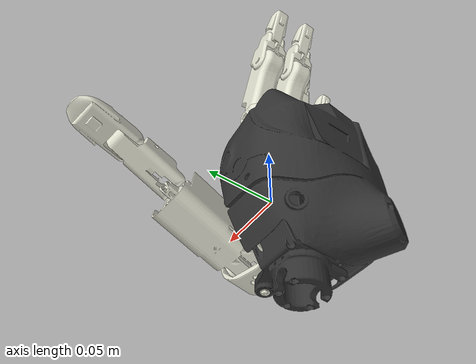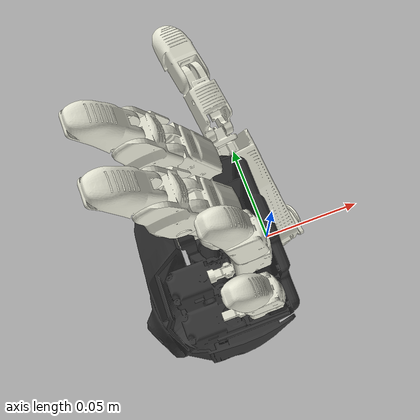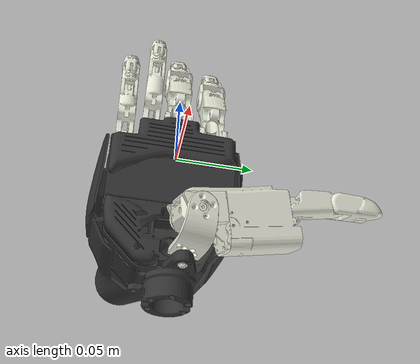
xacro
<?xml version="1.0"?>
<robot name="hand" xmlns:xacro="http://www.ros.org/wiki/xacro">

    <!-- Arguments -->
    <xacro:arg name="prefix" default="" />
    <xacro:arg name="use_hand_left" default="false" />

    <xacro:include filename="$(find liberhand_description)/urdf/hand_macro.xacro" />
    <xacro:property name="mesh_visual_path" value="file://$(find liberhand_description)/meshes/visual"/>

    <link name="world"/>

    <xacro:load_hand prefix="$(arg prefix)" connected_to="world" left="$(arg use_hand_left)">
        <origin rpy="0.0 0.0 0.0" xyz="0.0 0.0 0.0"/>
    </xacro:load_hand>

</robot>

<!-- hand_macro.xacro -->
<robot xmlns:xacro="http://www.ros.org/wiki/xacro">

    <xacro:macro name="load_hand" params=" prefix:='' connected_to:='' left:=False *origin">

        <xacro:if value="${(left == False)}">
            <xacro:property name="hand" value="hand_right"/>
            <xacro:property name="reverse" value="1"/>
        </xacro:if>
        <xacro:if value="${(left == True)}">
            <xacro:property name="hand" value="hand_left"/>
            <xacro:property name="reverse" value="-1"/>
        </xacro:if>

        <xacro:unless value="${not connected_to}">
            <joint name="${prefix}${connected_to}_to_${hand}_palm_fixed" type="fixed">
                <xacro:insert_block name="origin"/>
                <parent link="${prefix}${connected_to}" />
                <child link="${prefix}${hand}_palm" />
            </joint>
        </xacro:unless>

        <link name="${prefix}${hand}_palm">
            <inertial>
                <origin xyz="0 0 0" rpy="0 0 0" />
                <mass value="0.91778" />
                <inertia ixx="0.0018592" ixy="6.239E-05" ixz="-6.688E-05" iyy="0.0015814" iyz="3.163E-05" izz="0.00064901" />
            </inertial>
            <visual>
                <origin xyz="0 0 0" rpy="0 0 0" />
                <geometry>
                    <mesh filename="${mesh_visual_path}/palm.STL"  scale="1 ${reverse} 1"/>
                </geometry>
                <material name="hand_gray">
                    <color rgba="0.2 0.2 0.2 1" />
                </material>
            </visual>
            <collision>
                <origin xyz="0 0 0" rpy="0 0 0" />
                <geometry>
                    <mesh filename="${mesh_visual_path}/palm.STL"  scale="1 ${reverse} 1"/>
                </geometry>
            </collision>
        </link>
        <link name="${prefix}${hand}_f11">
            <inertial>
                <origin xyz="0 0.00069742 -0.0093798" rpy="0 0 0" />
                <mass value="0.0033015" />
                <inertia ixx="2E-07" ixy="0" ixz="0" iyy="3.1E-07" iyz="1E-08" izz="1.4E-07" />
            </inertial>
            <visual>
                <origin xyz="0 0 0" rpy="0 0 0" />
                <geometry>
                    <mesh filename="${mesh_visual_path}/f11.STL" />
                </geometry>
                <material name="hand_white">
                    <color rgba="0.913725 0.913725 0.847059 1" />
                </material>
            </visual>
            <collision>
                <origin xyz="0 0 0" rpy="0 0 0" />
                <geometry>
                    <mesh filename="${mesh_visual_path}/f11.STL" />
                </geometry>
            </collision>
        </link>
        <joint name="${prefix}${hand}_f11_joint" type="revolute">
            <origin xyz="-0.022466 ${reverse * 0.027654} 0.043657" rpy="1.5708 ${reverse * 0.02618} 1.5708" />
            <parent link="${prefix}${hand}_palm" />
            <child link="${prefix}${hand}_f11" />
            <axis xyz="0 0 ${-reverse}" />
            <limit lower="-0.4" upper="0.4" effort="10" velocity="3.14" />
            <dynamics damping="1.0" friction="0.01"/>
        </joint>
        <link name="${prefix}${hand}_f12">
            <inertial>
                <origin xyz="0.026032 -0.0074611 2.268E-05" rpy="0 0 0" />
                <mass value="0.058465" />
                <inertia ixx="4.34E-06" ixy="-4.9E-06" ixz="5.3E-07" iyy="1.396E-05" iyz="-2.1E-07" izz="1.633E-05" />
            </inertial>
            <visual>
                <origin xyz="0 0 0" rpy="0 0 0" />
                <geometry>
                    <mesh filename="${mesh_visual_path}/f12.STL" />
                </geometry>
                <material name="hand_white">
                    <color rgba="0.913725 0.913725 0.847059 1" />
                </material>
            </visual>
            <collision>
                <origin xyz="0 0 0" rpy="0 0 0" />
                <geometry>
                    <mesh filename="${mesh_visual_path}/f12.STL" />
                </geometry>
            </collision>
        </link>
        <joint name="${prefix}${hand}_f12_joint" type="revolute">
            <origin xyz="0 0 0" rpy="1.5708 0 1.5708" />
            <parent link="${prefix}${hand}_f11" />
            <child link="${prefix}${hand}_f12" />
            <axis xyz="0 0 1" />
            <limit lower="0" upper="2.09" effort="10" velocity="3.14" />
            <dynamics damping="1.0" friction="0.01"/>
        </joint>
        <link name="${prefix}${hand}_f13">
            <inertial>
                <origin xyz="0.0090975 -0.0015069 0.0013415" rpy="0 0 0" />
                <mass value="0.014574" />
                <inertia ixx="9.3E-07" ixy="-3.2E-07" ixz="-1.8E-07" iyy="2.04E-06" iyz="6E-08" izz="1.81E-06" />
            </inertial>
            <visual>
                <origin xyz="0 0 0" rpy="0 0 0" />
                <geometry>
                    <mesh filename="${mesh_visual_path}/f13.STL" />
                </geometry>
                <material name="hand_white">
                    <color rgba="0.913725 0.913725 0.847059 1" />
                </material>
            </visual>
            <collision>
                <origin xyz="0 0 0" rpy="0 0 0" />
                <geometry>
                    <mesh filename="${mesh_visual_path}/f13.STL" />
                </geometry>
            </collision>
        </link>
        <joint name="${prefix}${hand}_f13_joint" type="revolute">
            <origin xyz="0.048883 -0.018383 0" rpy="0 0 0" />
            <parent link="${prefix}${hand}_f12" />
            <child link="${prefix}${hand}_f13" />
            <axis xyz="0 0 1" />
            <limit lower="0" upper="1.744" effort="10" velocity="3.14" />
            <dynamics damping="1.0" friction="0.01"/>
        </joint>
        <link name="${prefix}${hand}_f14">
            <inertial>
                <origin xyz="0.007749 -0.0041898 -0.00072552" rpy="0 0 0" />
                <mass value="0.0055228" />
                <inertia ixx="2.3E-07" ixy="-1.5E-07" ixz="2E-08" iyy="4E-07" iyz="-1E-08" izz="5E-07" />
            </inertial>
            <visual>
                <origin xyz="0 0 0" rpy="0 0 0" />
                <geometry>
                    <mesh filename="${mesh_visual_path}/f14.STL" />
                </geometry>
                <material name="hand_white">
                    <color rgba="0.913725 0.913725 0.847059 1" />
                </material>
            </visual>
            <collision>
                <origin xyz="0 0 0" rpy="0 0 0" />
                <geometry>
                    <mesh filename="${mesh_visual_path}/f14.STL" />
                </geometry>
            </collision>
        </link>
        <joint name="${prefix}${hand}_f14_joint" type="revolute">
            <origin xyz="0.0284 -0.0092477 0" rpy="0 0 0" />
            <parent link="${prefix}${hand}_f13" />
            <child link="${prefix}${hand}_f14" />
            <axis xyz="0 0 1" />
            <limit lower="0" upper="1.744" effort="10" velocity="3.14" />
            <dynamics damping="1.0" friction="0.01"/>
        </joint>
        <link name="${prefix}${hand}_f14_end">
        </link>
        <joint name="${prefix}${hand}_f14_end_joint" type="fixed">
            <origin xyz="0.019695 -0.0034802 0" rpy="0 0 0" />
            <parent link="${prefix}${hand}_f14" />
            <child link="${prefix}${hand}_f14_end" />
            <axis xyz="0 0 0" />
        </joint>
        <link name="${prefix}${hand}_f21">
            <inertial>
                <origin xyz="0 0.00069742 -0.0093798" rpy="0 0 0" />
                <mass value="0.0033015" />
                <inertia ixx="2E-07" ixy="0" ixz="0" iyy="3.1E-07" iyz="1E-08" izz="1.4E-07" />
            </inertial>
            <visual>
                <origin xyz="0 0 0" rpy="0 0 0" />
                <geometry>
                    <mesh filename="${mesh_visual_path}/f21.STL" />
                </geometry>
                <material name="hand_white">
                    <color rgba="0.913725 0.913725 0.847059 1" />
                </material>
            </visual>
            <collision>
                <origin xyz="0 0 0" rpy="0 0 0" />
                <geometry>
                    <mesh filename="${mesh_visual_path}/f21.STL" />
                </geometry>
            </collision>
        </link>
        <joint name="${prefix}${hand}_f21_joint" type="revolute">
            <origin xyz="-0.022466 ${reverse * 0.0022583} 0.053546" rpy="1.5708 0 1.5708" />
            <parent link="${prefix}${hand}_palm" />
            <child link="${prefix}${hand}_f21" />
            <axis xyz="0 0 ${-reverse}" />
            <limit lower="-0.4" upper="0.4" effort="10" velocity="3.14" />
            <dynamics damping="1.0" friction="0.01"/>
        </joint>
        <link name="${prefix}${hand}_f22">
            <inertial>
                <origin xyz="0.026032 -0.0074611 2.268E-05" rpy="0 0 0" />
                <mass value="0.058465" />
                <inertia ixx="4.34E-06" ixy="-4.9E-06" ixz="5.3E-07" iyy="1.396E-05" iyz="-2.1E-07" izz="1.633E-05" />
            </inertial>
            <visual>
                <origin xyz="0 0 0" rpy="0 0 0" />
                <geometry>
                    <mesh filename="${mesh_visual_path}/f22.STL" />
                </geometry>
                <material name="hand_white">
                    <color rgba="0.913725 0.913725 0.847059 1" />
                </material>
            </visual>
            <collision>
                <origin xyz="0 0 0" rpy="0 0 0" />
                <geometry>
                    <mesh filename="${mesh_visual_path}/f22.STL" />
                </geometry>
            </collision>
        </link>
        <joint name="${prefix}${hand}_f22_joint" type="revolute">
            <origin xyz="0 0 0" rpy="1.5708 0 1.5708" />
            <parent link="${prefix}${hand}_f21" />
            <child link="${prefix}${hand}_f22" />
            <axis xyz="0 0 1" />
            <limit lower="0" upper="2.09" effort="10" velocity="3.14" />
            <dynamics damping="1.0" friction="0.01"/>
        </joint>
        <link name="${prefix}${hand}_f23">
            <inertial>
                <origin xyz="0.0090975 -0.0015069 0.0013415" rpy="0 0 0" />
                <mass value="0.014574" />
                <inertia ixx="9.3E-07" ixy="-3.2E-07" ixz="-1.8E-07" iyy="2.04E-06" iyz="6E-08" izz="1.81E-06" />
            </inertial>
            <visual>
                <origin xyz="0 0 0" rpy="0 0 0" />
                <geometry>
                    <mesh filename="${mesh_visual_path}/f23.STL" />
                </geometry>
                <material name="hand_white">
                    <color rgba="0.913725 0.913725 0.847059 1" />
                </material>
            </visual>
            <collision>
                <origin xyz="0 0 0" rpy="0 0 0" />
                <geometry>
                    <mesh filename="${mesh_visual_path}/f23.STL" />
                </geometry>
            </collision>
        </link>
        <joint name="${prefix}${hand}_f23_joint" type="revolute">
            <origin xyz="0.048883 -0.018383 0" rpy="0 0 0" />
            <parent link="${prefix}${hand}_f22" />
            <child link="${prefix}${hand}_f23" />
            <axis xyz="0 0 1" />
            <limit lower="0" upper="1.744" effort="10" velocity="3.14" />
            <dynamics damping="1.0" friction="0.01"/>
        </joint>
        <link name="${prefix}${hand}_f24">
            <inertial>
                <origin xyz="0.007749 -0.0041898 -0.00072552" rpy="0 0 0" />
                <mass value="0.0055228" />
                <inertia ixx="2.3E-07" ixy="-1.5E-07" ixz="2E-08" iyy="4E-07" iyz="-1E-08" izz="5E-07" />
            </inertial>
            <visual>
                <origin xyz="0 0 0" rpy="0 0 0" />
                <geometry>
                    <mesh filename="${mesh_visual_path}/f24.STL" />
                </geometry>
                <material name="hand_white">
                    <color rgba="0.913725 0.913725 0.847059 1" />
                </material>
            </visual>
            <collision>
                <origin xyz="0 0 0" rpy="0 0 0" />
                <geometry>
                    <mesh filename="${mesh_visual_path}/f24.STL" />
                </geometry>
            </collision>
        </link>
        <joint name="${prefix}${hand}_f24_joint" type="revolute">
            <origin xyz="0.0284 -0.0092477 0" rpy="0 0 0" />
            <parent link="${prefix}${hand}_f23" />
            <child link="${prefix}${hand}_f24" />
            <axis xyz="0 0 1" />
            <limit lower="0" upper="1.744" effort="10" velocity="3.14" />
            <dynamics damping="1.0" friction="0.01"/>
        </joint>
        <link name="${prefix}${hand}_f24_end">
        </link>
        <joint name="${prefix}${hand}_f24_end_joint" type="fixed">
            <origin xyz="0.019695 -0.0034802 0" rpy="0 0 0" />
            <parent link="${prefix}${hand}_f24" />
            <child link="${prefix}${hand}_f24_end" />
            <axis xyz="0 0 0" />
        </joint>
        <link name="${prefix}${hand}_f31">
            <inertial>
                <origin xyz="-6.964E-05 -0.00044078 -0.012759" rpy="0 0 0" />
                <mass value="0.0085521" />
                <inertia ixx="7.6E-07" ixy="0" ixz="0" iyy="7.6E-07" iyz="4E-08" izz="1.3E-07" />
            </inertial>
            <visual>
                <origin xyz="0 0 0" rpy="0 0 0" />
                <geometry>
                    <mesh filename="${mesh_visual_path}/f31.STL" />
                </geometry>
                <material name="hand_white">
                    <color rgba="0.913725 0.913725 0.847059 1" />
                </material>
            </visual>
            <collision>
                <origin xyz="0 0 0" rpy="0 0 0" />
                <geometry>
                    <mesh filename="${mesh_visual_path}/f31.STL" />
                </geometry>
            </collision>
        </link>
        <joint name="${prefix}${hand}_f31_joint" type="revolute">
            <origin xyz="-0.021466 ${-(reverse * 0.017542)} 0.047798" rpy="1.5708 0 1.5708" />
            <parent link="${prefix}${hand}_palm" />
            <child link="${prefix}${hand}_f31" />
            <axis xyz="0 0 ${-reverse}" />
            <limit lower="-0.4" upper="0.4" effort="10" velocity="3.14" />
            <dynamics damping="1.0" friction="0.01"/>
        </joint>
        <link name="${prefix}${hand}_f32">
            <inertial>
                <origin xyz="0.025132 0.0031733 -8.727E-05" rpy="0 0 0" />
                <mass value="0.01244" />
                <inertia ixx="4.5E-07" ixy="-1.2E-07" ixz="0" iyy="2.29E-06" iyz="0" izz="2.41E-06" />
            </inertial>
            <visual>
                <origin xyz="0 0 0" rpy="0 0 0" />
                <geometry>
                    <mesh filename="${mesh_visual_path}/f32.STL" />
                </geometry>
                <material name="hand_white">
                    <color rgba="0.913725 0.913725 0.847059 1" />
                </material>
            </visual>
            <collision>
                <origin xyz="0 0 0" rpy="0 0 0" />
                <geometry>
                    <mesh filename="${mesh_visual_path}/f32.STL" />
                </geometry>
            </collision>
        </link>
        <joint name="${prefix}${hand}_f32_joint" type="revolute">
            <origin xyz="0 0 0" rpy="1.5708 0 1.5708" />
            <parent link="${prefix}${hand}_f31" />
            <child link="${prefix}${hand}_f32" />
            <axis xyz="0 0 1" />
            <limit lower="0" upper="1.744" effort="10" velocity="3.14" />
            <dynamics damping="1.0" friction="0.01"/>
        </joint>
        <link name="${prefix}${hand}_f33">
            <inertial>
                <origin xyz="0.010032 -0.00058707 -9.093E-05" rpy="0 0 0" />
                <mass value="0.0071009" />
                <inertia ixx="2.8E-07" ixy="-8E-08" ixz="0" iyy="6.9E-07" iyz="0" izz="7E-07" />
            </inertial>
            <visual>
                <origin xyz="0 0 0" rpy="0 0 0" />
                <geometry>
                    <mesh filename="${mesh_visual_path}/f33.STL" />
                </geometry>
                <material name="hand_white">
                    <color rgba="0.913725 0.913725 0.847059 1" />
                </material>
            </visual>
            <collision>
                <origin xyz="0 0 0" rpy="0 0 0" />
                <geometry>
                    <mesh filename="${mesh_visual_path}/f33.STL" />
                </geometry>
            </collision>
        </link>
        <joint name="${prefix}${hand}_f33_joint" type="revolute">
            <origin xyz="0.044995 0.00066781 0" rpy="0 0 0" />
            <parent link="${prefix}${hand}_f32" />
            <child link="${prefix}${hand}_f33" />
            <axis xyz="0 0 1" />
            <limit lower="0" upper="1.744" effort="10" velocity="3.14" />
            <dynamics damping="1.0" friction="0.01"/>
        </joint>
        <link name="${prefix}${hand}_f34">
            <inertial>
                <origin xyz="0.010482 -0.0030354 -1.03E-05" rpy="0 0 0" />
                <mass value="0.0049513" />
                <inertia ixx="1.3E-07" ixy="-6E-08" ixz="0" iyy="3.2E-07" iyz="0" izz="3.7E-07" />
            </inertial>
            <visual>
                <origin xyz="0 0 0" rpy="0 0 0" />
                <geometry>
                    <mesh filename="${mesh_visual_path}/f34.STL" />
                </geometry>
                <material name="hand_white">
                    <color rgba="0.913725 0.913725 0.847059 1" />
                </material>
            </visual>
            <collision>
                <origin xyz="0 0 0" rpy="0 0 0" />
                <geometry>
                    <mesh filename="${mesh_visual_path}/f34.STL" />
                </geometry>
            </collision>
        </link>
        <joint name="${prefix}${hand}_f34_joint" type="revolute">
            <origin xyz="0.024601 -0.0044465 0" rpy="0 0 0" />
            <parent link="${prefix}${hand}_f33" />
            <child link="${prefix}${hand}_f34" />
            <axis xyz="0 0 1" />
            <limit lower="0" upper="1.744" effort="10" velocity="3.14" />
            <dynamics damping="1.0" friction="0.01"/>
        </joint>
        <link name="${prefix}${hand}_f34_end">
        </link>
        <joint name="${prefix}${hand}_f34_end_joint" type="fixed">
            <origin xyz="0.021134 0.0011803 0" rpy="0 0 0" />
            <parent link="${prefix}${hand}_f34" />
            <child link="${prefix}${hand}_f34_end" />
            <axis xyz="0 0 0" />
        </joint>
        <link name="${prefix}${hand}_f41">
            <inertial>
                <origin xyz="-6.964E-05 -0.00044078 -0.012759" rpy="0 0 0" />
                <mass value="0.0085521" />
                <inertia ixx="7.6E-07" ixy="0" ixz="0" iyy="7.6E-07" iyz="4E-08" izz="1.3E-07" />
            </inertial>
            <visual>
                <origin xyz="0 0 0" rpy="0 0 0" />
                <geometry>
                    <mesh filename="${mesh_visual_path}/f41.STL" />
                </geometry>
                <material name="hand_white">
                    <color rgba="0.913725 0.913725 0.847059 1" />
                </material>
            </visual>
            <collision>
                <origin xyz="0 0 0" rpy="0 0 0" />
                <geometry>
                    <mesh filename="${mesh_visual_path}/f41.STL" />
                </geometry>
            </collision>
        </link>
        <joint name="${prefix}${hand}_f41_joint" type="revolute">
            <origin xyz="-0.021466 ${-(reverse * 0.034458)} 0.032384" rpy="1.5708 ${-(reverse * 0.034907)} 1.5708" />
            <parent link="${prefix}${hand}_palm" />
            <child link="${prefix}${hand}_f41" />
            <axis xyz="0 0 ${-reverse}" />
            <limit lower="-0.4" upper="0.4" effort="10" velocity="3.14" />
            <dynamics damping="1.0" friction="0.01"/>
        </joint>
        <link name="${prefix}${hand}_f42">
            <inertial>
                <origin xyz="0.021044 0.0035949 -7.944E-05" rpy="0 0 0" />
                <mass value="0.0096409" />
                <inertia ixx="3.5E-07" ixy="-3E-08" ixz="0" iyy="1.24E-06" iyz="0" izz="1.35E-06" />
            </inertial>
            <visual>
                <origin xyz="0 0 0" rpy="0 0 0" />
                <geometry>
                    <mesh filename="${mesh_visual_path}/f42.STL" />
                </geometry>
                <material name="hand_white">
                    <color rgba="0.913725 0.913725 0.847059 1" />
                </material>
            </visual>
            <collision>
                <origin xyz="0 0 0" rpy="0 0 0" />
                <geometry>
                    <mesh filename="${mesh_visual_path}/f42.STL" />
                </geometry>
            </collision>
        </link>
        <joint name="${prefix}${hand}_f42_joint" type="revolute">
            <origin xyz="0 0 0" rpy="1.5708 0 1.5708" />
            <parent link="${prefix}${hand}_f41" />
            <child link="${prefix}${hand}_f42" />
            <axis xyz="0 0 1" />
            <limit lower="0" upper="1.6" effort="10" velocity="3.14" />
            <dynamics damping="1.0" friction="0.01"/>
        </joint>
        <link name="${prefix}${hand}_f43">
            <inertial>
                <origin xyz="0.010032 -0.00058707 -9.093E-05" rpy="0 0 0" />
                <mass value="0.0071009" />
                <inertia ixx="2.8E-07" ixy="-8E-08" ixz="0" iyy="6.9E-07" iyz="0" izz="7E-07" />
            </inertial>
            <visual>
                <origin xyz="0 0 0" rpy="0 0 0" />
                <geometry>
                    <mesh filename="${mesh_visual_path}/f43.STL" />
                </geometry>
                <material name="hand_white">
                    <color rgba="0.913725 0.913725 0.847059 1" />
                </material>
            </visual>
            <collision>
                <origin xyz="0 0 0" rpy="0 0 0" />
                <geometry>
                    <mesh filename="${mesh_visual_path}/f43.STL" />
                </geometry>
            </collision>
        </link>
        <joint name="${prefix}${hand}_f43_joint" type="revolute">
            <origin xyz="0.035975 0.001338 0" rpy="0 0 0" />
            <parent link="${prefix}${hand}_f42" />
            <child link="${prefix}${hand}_f43" />
            <axis xyz="0 0 1" />
            <limit lower="0" upper="1.744" effort="10" velocity="3.14" />
            <dynamics damping="1.0" friction="0.01"/>
        </joint>
        <link name="${prefix}${hand}_f44">
            <inertial>
                <origin xyz="0.010482 -0.0030354 -1.03E-05" rpy="0 0 0" />
                <mass value="0.0049513" />
                <inertia ixx="1.3E-07" ixy="-6E-08" ixz="0" iyy="3.2E-07" iyz="0" izz="3.7E-07" />
            </inertial>
            <visual>
                <origin xyz="0 0 0" rpy="0 0 0" />
                <geometry>
                    <mesh filename="${mesh_visual_path}/f44.STL" />
                </geometry>
                <material name="hand_white">
                    <color rgba="0.913725 0.913725 0.847059 1" />
                </material>
            </visual>
            <collision>
                <origin xyz="0 0 0" rpy="0 0 0" />
                <geometry>
                    <mesh filename="${mesh_visual_path}/f44.STL" />
                </geometry>
            </collision>
        </link>
        <joint name="${prefix}${hand}_f44_joint" type="revolute">
            <origin xyz="0.024621 -0.004339 0" rpy="0 0 0" />
            <parent link="${prefix}${hand}_f43" />
            <child link="${prefix}${hand}_f44" />
            <axis xyz="0 0 1" />
            <limit lower="0" upper="1.744" effort="10" velocity="3.14" />
            <dynamics damping="1.0" friction="0.01"/>
        </joint>
        <link name="${prefix}${hand}_f44_end">
        </link>
        <joint name="${prefix}${hand}_f44_end_joint" type="fixed">
            <origin xyz="0.021123 0.0013734 0" rpy="0 0 0" />
            <parent link="${prefix}${hand}_f44" />
            <child link="${prefix}${hand}_f44_end" />
            <axis xyz="0 0 0" />
        </joint>
        <link name="${prefix}${hand}_f51">
            <inertial>
                <origin xyz="0.0053991 0.0016936 0.01157" rpy="0 0 0" />
                <mass value="0.022542" />
                <inertia ixx="3.06E-06" ixy="4.2E-07" ixz="3.3E-07" iyy="5.17E-06" iyz="1E-08" izz="3.39E-06" />
            </inertial>
            <visual>
                <origin xyz="0 0 0" rpy="0 0 0" />
                <geometry>
                    <mesh filename="${mesh_visual_path}/f51.STL"  scale="${reverse} 1 1"/>
                </geometry>
                <material name="hand_white">
                    <color rgba="0.913725 0.913725 0.847059 1" />
                </material>
            </visual>
            <collision>
                <origin xyz="0 0 0" rpy="0 0 0" />
                <geometry>
                    <mesh filename="${mesh_visual_path}/f51.STL"  scale="${reverse} 1 1"/>
                </geometry>
            </collision>
        </link>
        <joint name="${prefix}${hand}_f51_joint" type="revolute">
            <xacro:if value="${(left == False)}">
                <origin xyz="-0.00049657 0.0084524 -0.066754" rpy="0 0 0" />
            </xacro:if>
            <xacro:if value="${(left == True)}">
                <origin xyz="-0.00049657 -0.0084524 -0.066754" rpy="0 0 3.14" />
            </xacro:if>
            <parent link="${prefix}${hand}_palm" />
            <child link="${prefix}${hand}_f51" />
            <axis xyz="0 0 ${-reverse}" />
            <limit lower="0" upper="1.9" effort="10" velocity="3.14" />
            <dynamics damping="1.0" friction="0.01"/>
        </joint>
        <link name="${prefix}${hand}_f52">
            <inertial>
                <origin xyz="0.03317 -0.0064258 -0.00083733" rpy="0 0 0" />
                <mass value="0.12909" />
                <inertia ixx="1.628E-05" ixy="-6.22E-06" ixz="-3.01E-06" iyy="6.413E-05" iyz="1.13E-06" izz="6.867E-05" />
            </inertial>
            <visual>
                <origin xyz="0 0 0" rpy="0 0 0" />
                <geometry>
                    <mesh filename="${mesh_visual_path}/f52.STL" scale="1 1 ${reverse}"/>
                </geometry>
                <material name="hand_white">
                    <color rgba="0.913725 0.913725 0.847059 1" />
                </material>
            </visual>
            <collision>
                <origin xyz="0 0 0" rpy="0 0 0" />
                <geometry>
                    <mesh filename="${mesh_visual_path}/f52.STL" scale="1 1 ${reverse}"/>
                </geometry>
            </collision>
        </link>
        <joint name="${prefix}${hand}_f52_joint" type="revolute">
            <xacro:if value="${(left == False)}">
                <origin xyz="0.0092399 0.0031582 0.022073" rpy="1.8447 -0.25085 1.7172" />
            </xacro:if>
            <xacro:if value="${(left == True)}">
                <origin xyz="-0.0092399 0.0031582 0.022073" rpy="1.2969 -0.25085 1.4244" />
            </xacro:if>
            <parent link="${prefix}${hand}_f51" />
            <child link="${prefix}${hand}_f52" />
            <axis xyz="0 0 1" />
            <limit lower="0" upper="1.332" effort="10" velocity="3.14" />
            <dynamics damping="1.0" friction="0.01"/>
        </joint>
        <link name="${prefix}${hand}_f53">
            <inertial>
                <origin xyz="0.021453 0.0041043 -5.93E-06" rpy="0 0 0" />
                <mass value="0.011849" />
                <inertia ixx="6.6E-07" ixy="-1E-08" ixz="-1E-08" iyy="1.94E-06" iyz="0" izz="1.88E-06" />
            </inertial>
            <visual>
                <origin xyz="0 0 0" rpy="0 0 0" />
                <geometry>
                    <mesh filename="${mesh_visual_path}/f53.STL" />
                </geometry>
                <material name="hand_white">
                    <color rgba="0.913725 0.913725 0.847059 1" />
                </material>
            </visual>
            <collision>
                <origin xyz="0 0 0" rpy="0 0 0" />
                <geometry>
                    <mesh filename="${mesh_visual_path}/f53.STL" />
                </geometry>
            </collision>
        </link>
        <joint name="${prefix}${hand}_f53_joint" type="revolute">
            <origin xyz="0.0654 0 0" rpy="0 0 0" />
            <parent link="${prefix}${hand}_f52" />
            <child link="${prefix}${hand}_f53" />
            <axis xyz="0 0 1" />
            <limit lower="0" upper="1.744" effort="10" velocity="3.14" />
            <dynamics damping="1.0" friction="0.01"/>
        </joint>
        <link name="${prefix}${hand}_f54">
            <inertial>
                <origin xyz="0.013824 -0.0017677 -5.567E-05" rpy="0 0 0" />
                <mass value="0.010348" />
                <inertia ixx="5.5E-07" ixy="-1.5E-07" ixz="0" iyy="1.35E-06" iyz="0" izz="1.17E-06" />
            </inertial>
            <visual>
                <origin xyz="0 0 0" rpy="0 0 0" />
                <geometry>
                    <mesh filename="${mesh_visual_path}/f54.STL" />
                </geometry>
                <material name="hand_white">
                    <color rgba="0.913725 0.913725 0.847059 1" />
                </material>
            </visual>
            <collision>
                <origin xyz="0 0 0" rpy="0 0 0" />
                <geometry>
                    <mesh filename="${mesh_visual_path}/f54.STL" />
                </geometry>
            </collision>
        </link>
        <joint name="${prefix}${hand}_f54_joint" type="revolute">
            <origin xyz="0.035837 0.0034221 0" rpy="0 0 0" />
            <parent link="${prefix}${hand}_f53" />
            <child link="${prefix}${hand}_f54" />
            <axis xyz="0 0 1" />
            <limit lower="0" upper="1.744" effort="10" velocity="3.14" />
            <dynamics damping="1.0" friction="0.01"/>
        </joint>
        <link name="${prefix}${hand}_f54_end">
        </link>
        <joint name="${prefix}${hand}_f54_end_joint" type="fixed">
            <origin xyz="0.024 0.0044004 0" rpy="0 0 0" />
            <parent link="${prefix}${hand}_f54" />
            <child link="${prefix}${hand}_f54_end" />
            <axis xyz="0 0 0" />
        </joint>

        <link name="${prefix}${hand}_wrist">
        </link>
        <joint name="${prefix}${hand}_wrist_joint" type="fixed">
            <xacro:if value="${(left == False)}">
                <origin rpy="1.570796326 0.0 1.570796326" xyz="-0.025962 0.005739 -0.069754"/>
            </xacro:if>
            <xacro:if value="${(left == True)}">
                <origin rpy="1.570796326 0.0 1.570796326" xyz="-0.025962 -0.005739 -0.069754"/>
            </xacro:if>
            <parent link="${prefix}${hand}_palm" />
            <child link="${prefix}${hand}_wrist" />
        </joint>

    </xacro:macro>

</robot>
